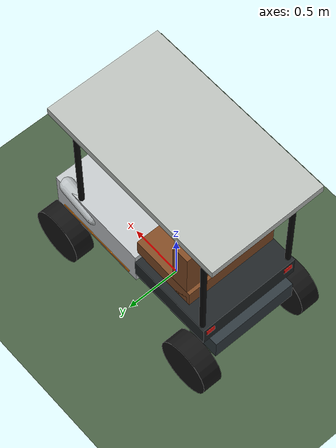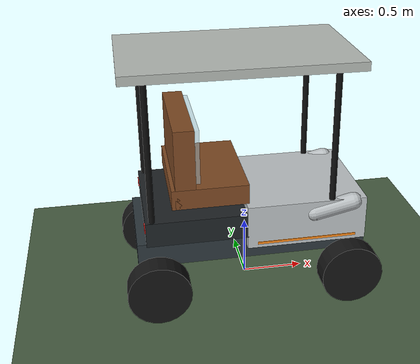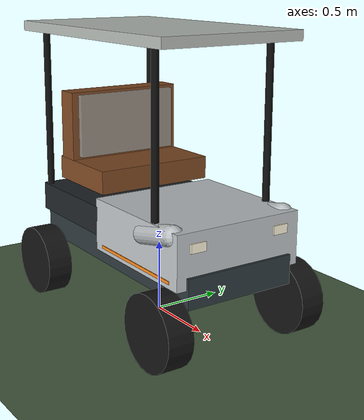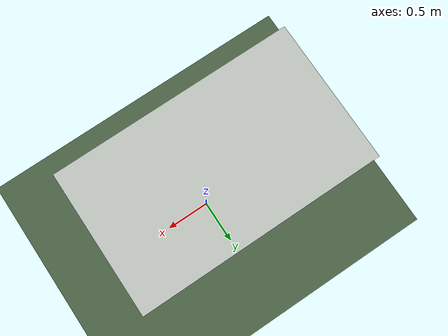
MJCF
<?xml version='1.0' encoding='utf-8'?>
<mujoco model="generic_ackermann_golf_cart_world">
  <compiler angle="radian" autolimits="true" />
  <option timestep="0.002" gravity="0 0 -9.81" integrator="implicitfast" cone="elliptic" />
  <asset>
    <texture name="skybox" type="skybox" builtin="gradient" rgb1="0.45 0.65 0.95" rgb2="0.95 0.97 1.00" width="512" height="3072" />
    <texture name="ground_tex" type="2d" builtin="checker" rgb1="0.32 0.42 0.30" rgb2="0.24 0.32 0.22" width="512" height="512" />
    <material name="ground_mat" texture="ground_tex" texrepeat="12 12" reflectance="0.05" />
  </asset>
  <worldbody>
    <geom name="ground" type="plane" size="30 30 0.1" material="ground_mat" condim="4" friction="1.1 0.01 0.001" solref="0.01 1" solimp="0.9 0.95 0.001" />
    <light name="sun" directional="true" pos="0 0 100" dir="-0.3 -0.4 -1" diffuse="0.9 0.9 0.9" ambient="0.30 0.30 0.30" specular="0.15 0.15 0.15" />
    <light name="fill_light" directional="true" pos="0 0 50" dir="0.5 0.4 -1" diffuse="0.25 0.25 0.28" ambient="0.08 0.08 0.10" specular="0.05 0.05 0.05" />
    <body name="vehicle" pos="0 0 0.42">
      <freejoint name="base_freejoint" />
      <geom name="body_front_visual" type="box" pos="0.42 0 0.28" size="0.48 0.47 0.18" rgba="0.75 0.77 0.78 1" contype="0" conaffinity="0" density="0" group="1" />
      <geom name="body_floor_visual" type="box" pos="-0.45 0 0.30" size="0.40 0.47 0.10" rgba="0.12 0.14 0.15 1" contype="0" conaffinity="0" density="0" group="1" />
      <geom name="seat_visual" type="box" pos="-0.34 0 0.56" size="0.30 0.43 0.08" rgba="0.50 0.29 0.14 1" contype="0" conaffinity="0" density="0" group="1" />
      <geom name="seat_back_visual" type="box" pos="-0.53 0 0.80" size="0.08 0.43 0.32" rgba="0.50 0.29 0.14 1" contype="0" conaffinity="0" density="0" group="1" />
      <geom name="seat_pad_visual" type="box" pos="-0.45 0 0.88" size="0.04 0.38 0.22" rgba="0.72 0.82 0.86 0.55" contype="0" conaffinity="0" density="0" group="1" />
      <geom name="head_lamp_left_visual" type="box" pos="0.905 0.32 0.36" size="0.006 0.055 0.03" rgba="1 0.97 0.86 1" contype="0" conaffinity="0" density="0" group="1" />
      <geom name="head_lamp_right_visual" type="box" pos="0.905 -0.32 0.36" size="0.006 0.055 0.03" rgba="1 0.97 0.86 1" contype="0" conaffinity="0" density="0" group="1" />
      <geom name="tail_lamp_left_visual" type="box" pos="-0.853 0.40 0.33" size="0.004 0.04 0.025" rgba="0.9 0.1 0.08 1" contype="0" conaffinity="0" density="0" group="1" />
      <geom name="tail_lamp_right_visual" type="box" pos="-0.853 -0.40 0.33" size="0.004 0.04 0.025" rgba="0.9 0.1 0.08 1" contype="0" conaffinity="0" density="0" group="1" />
      <geom name="side_led_left_visual" type="box" pos="0.42 0.473 0.14" size="0.40 0.003 0.01" rgba="1 0.55 0.1 1" contype="0" conaffinity="0" density="0" group="1" />
      <geom name="side_led_right_visual" type="box" pos="0.42 -0.473 0.14" size="0.40 0.003 0.01" rgba="1 0.55 0.1 1" contype="0" conaffinity="0" density="0" group="1" />
      <geom name="front_bumper_left_visual" type="capsule" fromto="0.48 -0.43 0.35 0.80 -0.43 0.42" size="0.07" rgba="0.72 0.74 0.75 1" contype="0" conaffinity="0" density="0" group="1" />
      <geom name="front_bumper_right_visual" type="capsule" fromto="0.48 0.43 0.35 0.80 0.43 0.42" size="0.07" rgba="0.72 0.74 0.75 1" contype="0" conaffinity="0" density="0" group="1" />
      <geom name="roof_post_rear_left_visual" type="capsule" fromto="-0.80 -0.44 0.35 -0.80 -0.44 1.55" size="0.025" rgba="0.05 0.05 0.05 1" contype="0" conaffinity="0" density="0" group="1" />
      <geom name="roof_post_rear_right_visual" type="capsule" fromto="-0.80 0.44 0.35 -0.80 0.44 1.55" size="0.025" rgba="0.05 0.05 0.05 1" contype="0" conaffinity="0" density="0" group="1" />
      <geom name="roof_post_front_left_visual" type="capsule" fromto="0.62 -0.44 0.35 0.62 -0.44 1.55" size="0.025" rgba="0.05 0.05 0.05 1" contype="0" conaffinity="0" density="0" group="1" />
      <geom name="roof_post_front_right_visual" type="capsule" fromto="0.62 0.44 0.35 0.62 0.44 1.55" size="0.025" rgba="0.05 0.05 0.05 1" contype="0" conaffinity="0" density="0" group="1" />
      <geom name="roof_visual" type="box" pos="-0.08 0 1.56" size="0.90 0.53 0.035" rgba="0.72 0.74 0.72 1" contype="0" conaffinity="0" density="0" group="1" />
      <body name="front_left_steer" pos="0.775 0.52 -0.17">
        <inertial pos="0 0 0" mass="0.3" diaginertia="0.001 0.001 0.001" />
        <joint name="front_left_steer_joint" type="hinge" axis="0 0 1" range="-0.90 0.90" damping="0.05" armature="0.01" />
        <body name="front_left_wheel">
          <joint name="front_left_wheel_joint" type="hinge" axis="0 1 0" damping="0.05" armature="0.01" />
          <geom name="front_left_tire_visual" type="cylinder" size="0.25 0.09" euler="1.57079632679 0 0" rgba="0.08 0.08 0.08 1" contype="0" conaffinity="0" density="0" group="1" />
          <geom name="front_left_tire" type="cylinder" size="0.25 0.04" euler="1.57079632679 0 0" mass="7" rgba="0 0 0 0" condim="3" friction="1.6 0.02 0.002" solref="0.01 1" solimp="0.9 0.95 0.001" />
        </body>
      </body>
      <body name="front_right_steer" pos="0.775 -0.52 -0.17">
        <inertial pos="0 0 0" mass="0.3" diaginertia="0.001 0.001 0.001" />
        <joint name="front_right_steer_joint" type="hinge" axis="0 0 1" range="-0.90 0.90" damping="0.05" armature="0.01" />
        <body name="front_right_wheel">
          <joint name="front_right_wheel_joint" type="hinge" axis="0 1 0" damping="0.05" armature="0.01" />
          <geom name="front_right_tire_visual" type="cylinder" size="0.25 0.09" euler="1.57079632679 0 0" rgba="0.08 0.08 0.08 1" contype="0" conaffinity="0" density="0" group="1" />
          <geom name="front_right_tire" type="cylinder" size="0.25 0.04" euler="1.57079632679 0 0" mass="7" rgba="0 0 0 0" condim="3" friction="1.6 0.02 0.002" solref="0.01 1" solimp="0.9 0.95 0.001" />
        </body>
      </body>
      <body name="rear_left_wheel" pos="-0.775 0.52 -0.17">
        <joint name="rear_left_wheel_joint" type="hinge" axis="0 1 0" damping="0.05" armature="0.01" />
        <geom name="rear_left_tire_visual" type="cylinder" size="0.25 0.09" euler="1.57079632679 0 0" rgba="0.08 0.08 0.08 1" contype="0" conaffinity="0" density="0" group="1" />
        <geom name="rear_left_tire" type="cylinder" size="0.25 0.04" euler="1.57079632679 0 0" mass="7" rgba="0 0 0 0" condim="3" friction="1.6 0.02 0.002" solref="0.01 1" solimp="0.9 0.95 0.001" />
      </body>
      <body name="rear_right_wheel" pos="-0.775 -0.52 -0.17">
        <joint name="rear_right_wheel_joint" type="hinge" axis="0 1 0" damping="0.05" armature="0.01" />
        <geom name="rear_right_tire_visual" type="cylinder" size="0.25 0.09" euler="1.57079632679 0 0" rgba="0.08 0.08 0.08 1" contype="0" conaffinity="0" density="0" group="1" />
        <geom name="rear_right_tire" type="cylinder" size="0.25 0.04" euler="1.57079632679 0 0" mass="7" rgba="0 0 0 0" condim="3" friction="1.6 0.02 0.002" solref="0.01 1" solimp="0.9 0.95 0.001" />
      </body>
      <geom name="chassis_collision" type="box" pos="0 0 0.08" size="0.92 0.40 0.10" mass="170" rgba="0.18 0.22 0.24 1" condim="4" friction="1.1 0.01 0.001" solref="0.01 1" solimp="0.9 0.95 0.001" />
      <geom name="roof_collision" type="box" pos="-0.08 0 1.56" size="0.90 0.53 0.035" density="0" rgba="0 0 0 0" condim="4" friction="1.1 0.01 0.001" solref="0.01 1" solimp="0.9 0.95 0.001" />
    </body>
  </worldbody>
  <actuator>
    <position name="front_left_steer_motor" joint="front_left_steer_joint" ctrllimited="true" ctrlrange="-0.9 0.9" kp="1200" kv="60" />
    <position name="front_right_steer_motor" joint="front_right_steer_joint" ctrllimited="true" ctrlrange="-0.9 0.9" kp="1200" kv="60" />
    <velocity name="rear_left_wheel_motor" joint="rear_left_wheel_joint" ctrllimited="true" ctrlrange="-20 20" kv="220" />
    <velocity name="rear_right_wheel_motor" joint="rear_right_wheel_joint" ctrllimited="true" ctrlrange="-20 20" kv="220" />
  </actuator>
  <contact>
    <exclude body1="vehicle" body2="front_left_wheel" />
    <exclude body1="vehicle" body2="front_right_wheel" />
  </contact>
</mujoco>
